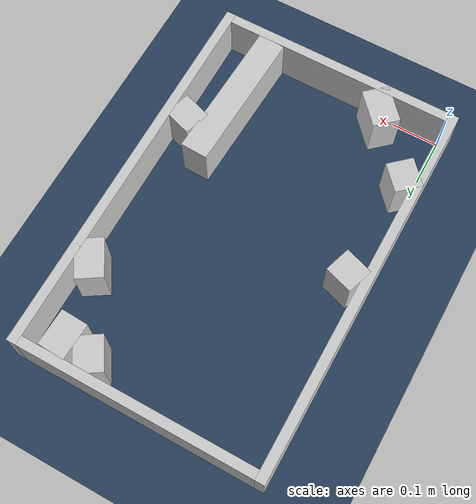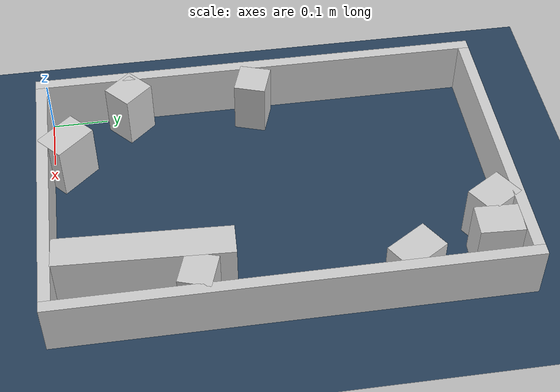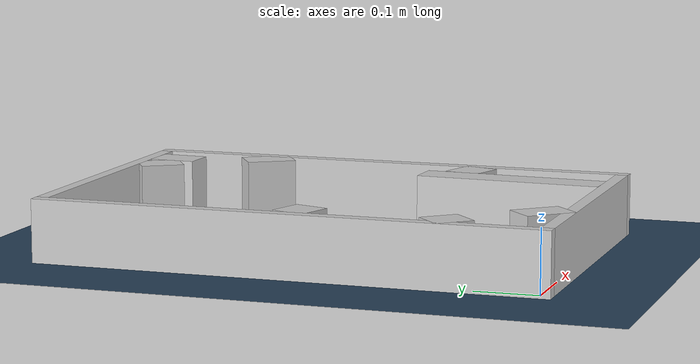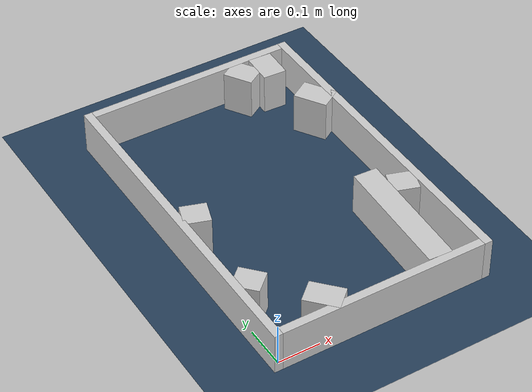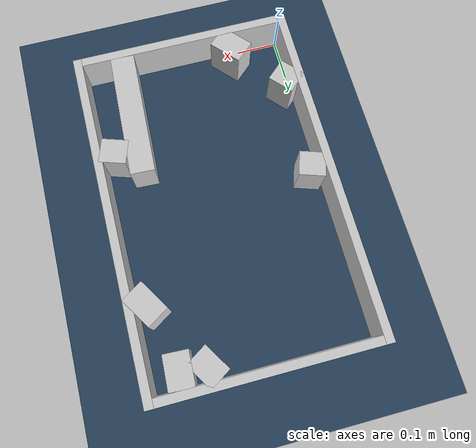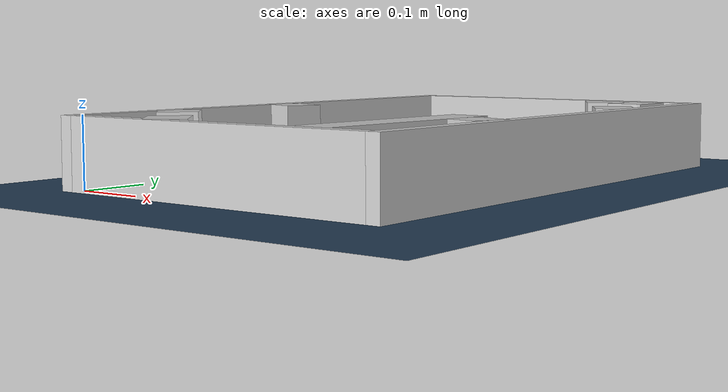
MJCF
<?xml version="1.0" ?>
<mujoco model="generated_real_template">
  <compiler angle="degree"/>
  <option timestep="0.002" integrator="implicitfast" iterations="100" cone="elliptic"/>
  <default>
    <geom density="1"/>
  </default>
  <asset>
    <texture builtin="gradient" height="3072" rgb1="0.3 0.5 0.7" rgb2="0 0 0" type="skybox" width="512"/>
    <texture builtin="checker" height="300" mark="edge" markrgb="0.8 0.8 0.8" name="groundplane" rgb1="0.2 0.3 0.4" rgb2="0.1 0.2 0.3" type="2d" width="300"/>
    <material name="groundplane" reflectance="0.2" texrepeat="5 5" texture="groundplane" texuniform="true"/>
  </asset>
  <worldbody>
    <light dir="0 0 -1" directional="true" pos="0 0 1.5"/>
    <geom name="floor" type="plane" condim="4" friction="0.5 0.005 0.001" material="groundplane" size="0 0 0.05"/>
    <body name="walls">
      <geom name="wall_boundary_left" type="box" condim="4" friction="1.0 0.005 0.0001" rgba="0.8 0.8 0.8 1" pos="-0.010000 0.387500 0.050000" euler="0 0 0.000000" size="0.010000 0.407500 0.050000"/>
      <geom name="wall_boundary_right" type="box" condim="4" friction="1.0 0.005 0.0001" rgba="0.8 0.8 0.8 1" pos="0.500000 0.387500 0.050000" euler="0 0 0.000000" size="0.010000 0.407500 0.050000"/>
      <geom name="wall_boundary_bottom" type="box" condim="4" friction="1.0 0.005 0.0001" rgba="0.8 0.8 0.8 1" pos="0.245000 -0.010000 0.050000" euler="0 0 0.000000" size="0.245000 0.010000 0.050000"/>
      <geom name="wall_boundary_top" type="box" condim="4" friction="1.0 0.005 0.0001" rgba="0.8 0.8 0.8 1" pos="0.245000 0.785000 0.050000" euler="0 0 0.000000" size="0.245000 0.010000 0.050000"/>
      <geom name="wall_inner_1_1" type="box" condim="4" friction="1.0 0.005 0.0001" rgba="0.8 0.8 0.8 1" pos="0.128479 0.030079 0.050000" euler="0 0 132.164372" size="0.040581 0.028500 0.050000"/>
      <geom name="wall_inner_1_2" type="box" condim="4" friction="1.0 0.005 0.0001" rgba="0.8 0.8 0.8 1" pos="0.022202 0.147433 0.050000" euler="0 0 132.164372" size="0.031399 0.028500 0.050000"/>
      <geom name="wall_inner_2_1" type="box" condim="4" friction="1.0 0.005 0.0001" rgba="0.8 0.8 0.8 1" pos="0.400047 0.150041 0.050000" euler="0 0 87.451019" size="0.150189 0.028500 0.050000"/>
      <geom name="wall_inner_2_2" type="box" condim="4" friction="1.0 0.005 0.0001" rgba="0.8 0.8 0.8 1" pos="0.426172 0.736885 0.050000" euler="0 0 87.451019" size="0.038153 0.028500 0.050000"/>
      <geom name="wall_inner_3_1" type="box" condim="4" friction="1.0 0.005 0.0001" rgba="0.8 0.8 0.8 1" pos="0.028785 0.376898 0.050000" euler="0 0 -18.371575" size="0.030331 0.028500 0.050000"/>
      <geom name="wall_inner_3_2" type="box" condim="4" friction="1.0 0.005 0.0001" rgba="0.8 0.8 0.8 1" pos="0.460253 0.233605 0.050000" euler="0 0 -18.371575" size="0.031345 0.028500 0.050000"/>
      <geom name="wall_inner_4_1" type="box" condim="4" friction="1.0 0.005 0.0001" rgba="0.8 0.8 0.8 1" pos="0.366072 0.745060 0.050000" euler="0 0 -57.792723" size="0.035384 0.028500 0.050000"/>
      <geom name="wall_inner_4_2" type="box" condim="4" friction="1.0 0.005 0.0001" rgba="0.8 0.8 0.8 1" pos="0.464324 0.589084 0.050000" euler="0 0 -57.792723" size="0.040453 0.028500 0.050000"/>
    </body>
  </worldbody>
</mujoco>
